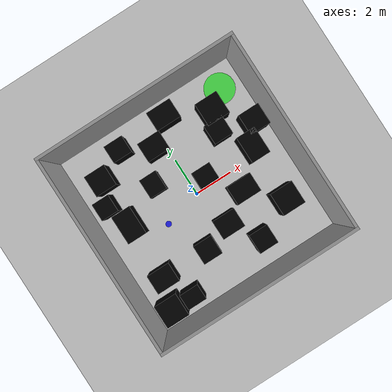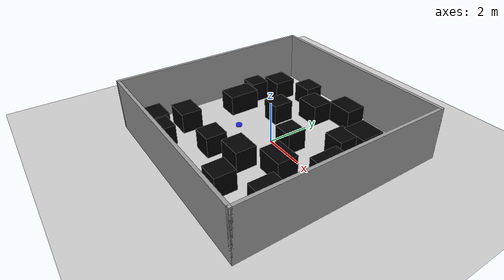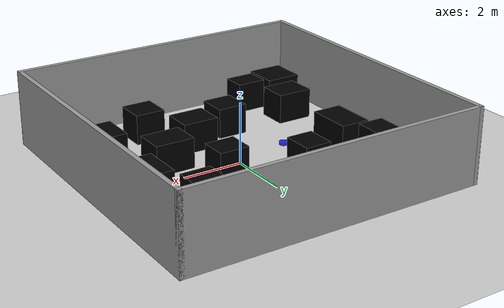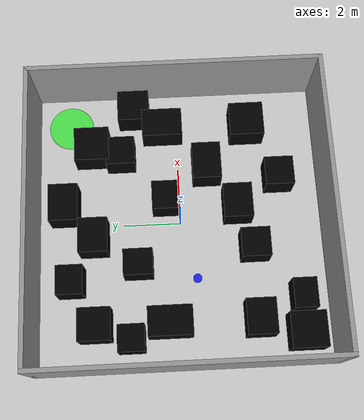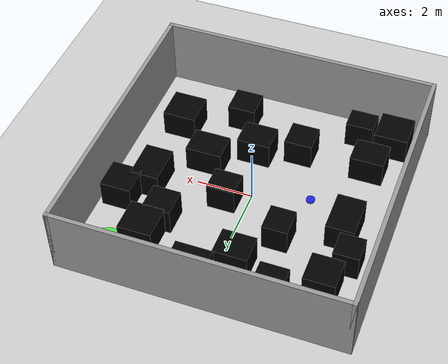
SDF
<?xml version="1.0" ?>
<sdf version="1.6">
  <world name="env_20_feasible_path">
    <gravity>0 0 -9.8</gravity>

    <!-- Sun & Ground -->
    <include><uri>model://sun</uri></include>
    <include><uri>model://ground_plane</uri></include>

    <!-- Walls -->
    <model name="walls">
      <static>true</static>
      <link name="link">
        <collision name="bottom_collision"><geometry><box><size>10.15 0.15 2.5</size></box></geometry><pose>0 -5 1.25 0 0 0</pose></collision>
        <visual name="wall_bottom"><geometry><box><size>10.15 0.15 2.5</size></box></geometry><pose>0 -5 1.25 0 0 0</pose><material><ambient>0.6 0.6 0.6 1</ambient></material></visual>
        <collision name="top_collision"><geometry><box><size>10.15 0.15 2.5</size></box></geometry><pose>0 5 1.25 0 0 0</pose></collision>
        <visual name="wall_top"><geometry><box><size>10.15 0.15 2.5</size></box></geometry><pose>0 5 1.25 0 0 0</pose><material><ambient>0.6 0.6 0.6 1</ambient></material></visual>
        <collision name="left_collision"><geometry><box><size>0.15 10.15 2.5</size></box></geometry><pose>-5 0 1.25 0 0 0</pose></collision>
        <visual name="wall_left"><geometry><box><size>0.15 10.15 2.5</size></box></geometry><pose>-5 0 1.25 0 0 0</pose><material><ambient>0.6 0.6 0.6 1</ambient></material></visual>
        <collision name="right_collision"><geometry><box><size>0.15 10.15 2.5</size></box></geometry><pose>5 0 1.25 0 0 0</pose></collision>
        <visual name="wall_right"><geometry><box><size>0.15 10.15 2.5</size></box></geometry><pose>5 0 1.25 0 0 0</pose><material><ambient>0.6 0.6 0.6 1</ambient></material></visual>
      </link>
    </model>

    <!-- Start -->
    <model name="start_marker">
      <static>true</static>
      <pose>-1.99 -0.5 0.05 0 0 0</pose>
      <link name="link">
        <collision name="collision"><geometry><cylinder><radius>0.15</radius><length>0.1</length></cylinder></geometry></collision>
        <visual name="visual"><geometry><cylinder><radius>0.15</radius><length>0.1</length></cylinder></geometry><material><ambient>0 0 1 0.8</ambient></material></visual>
      </link>
    </model>

    <!-- Goal -->
    <model name="goal_region">
      <static>true</static>
      <pose>3.8 3.8 0.05 0 0 0</pose>
      <link name="link">
        <collision name="collision"><geometry><cylinder><radius>0.8</radius><length>0.05</length></cylinder></geometry></collision>
        <visual name="visual"><geometry><cylinder><radius>0.8</radius><length>0.05</length></cylinder></geometry><material><ambient>0 1 0 0.6</ambient></material></visual>
      </link>
    </model>

    <!-- Obstacles -->
    <!-- Arranged with a diagonal corridor at least 0.5 m wide from start to goal -->

    <!-- Bottom-left cluster -->
    <model name="obs0"><static>true</static><pose>-4.0 -4.0 0.5 0 0 0</pose><link name="l"><collision name="c"><geometry><box><size>1.2 1.2 1.0</size></box></geometry></collision><visual name="v"><geometry><box><size>1.2 1.2 1.0</size></box></geometry><material><ambient>0 0 0 1</ambient></material></visual></link></model>
    <model name="obs1"><static>true</static><pose>-2.8 -4.0 0.5 0 0 0</pose><link name="l"><collision name="c"><geometry><box><size>1.0 0.8 1.0</size></box></geometry></collision><visual name="v"><geometry><box><size>1.0 0.8 1.0</size></box></geometry><material><ambient>0 0 0 1</ambient></material></visual></link></model>
    <model name="obs2"><static>true</static><pose>-3.5 -2.5 0.5 0 0 0</pose><link name="l"><collision name="c"><geometry><box><size>1.2 1.0 1.0</size></box></geometry></collision><visual name="v"><geometry><box><size>1.2 1.0 1.0</size></box></geometry><material><ambient>0 0 0 1</ambient></material></visual></link></model>

    <!-- Mid-left barrier -->
    <model name="obs3"><static>true</static><pose>-3.5 0.5 0.5 0 0 0</pose><link name="l"><collision name="c"><geometry><box><size>1.0 1.5 1.0</size></box></geometry></collision><visual name="v"><geometry><box><size>1.0 1.5 1.0</size></box></geometry><material><ambient>0 0 0 1</ambient></material></visual></link></model>

    <!-- Central obstacles -->
    <model name="obs4"><static>true</static><pose>-1.0 -2.5 0.5 0 0 0</pose><link name="l"><collision name="c"><geometry><box><size>1.0 1.0 1.0</size></box></geometry></collision><visual name="v"><geometry><box><size>1.0 1.0 1.0</size></box></geometry><material><ambient>0 0 0 1</ambient></material></visual></link></model>
    <model name="obs5"><static>true</static><pose>0.5 -2.0 0.5 0 0 0</pose><link name="l"><collision name="c"><geometry><box><size>1.2 1.0 1.0</size></box></geometry></collision><visual name="v"><geometry><box><size>1.2 1.0 1.0</size></box></geometry><material><ambient>0 0 0 1</ambient></material></visual></link></model>
    <model name="obs6"><static>true</static><pose>2.0 -1.0 0.5 0 0 0</pose><link name="l"><collision name="c"><geometry><box><size>1.3 1.0 1.0</size></box></geometry></collision><visual name="v"><geometry><box><size>1.3 1.0 1.0</size></box></geometry><material><ambient>0 0 0 1</ambient></material></visual></link></model>

    <!-- Mid-right cluster -->
    <model name="obs7"><static>true</static><pose>3.5 -2.5 0.5 0 0 0</pose><link name="l"><collision name="c"><geometry><box><size>1.2 1.2 1.0</size></box></geometry></collision><visual name="v"><geometry><box><size>1.2 1.2 1.0</size></box></geometry><material><ambient>0 0 0 1</ambient></material></visual></link></model>

    <!-- Center-right barrier -->
    <model name="obs8"><static>true</static><pose>3.5 0.5 0.5 0 0 0</pose><link name="l"><collision name="c"><geometry><box><size>1.0 1.4 1.0</size></box></geometry></collision><visual name="v"><geometry><box><size>1.0 1.4 1.0</size></box></geometry><material><ambient>0 0 0 1</ambient></material></visual></link></model>

    <!-- Top clusters -->
    <model name="obs9"><static>true</static><pose>-3.5 3.0 0.5 0 0 0</pose><link name="l"><collision name="c"><geometry><box><size>1.1 1.1 1.0</size></box></geometry></collision><visual name="v"><geometry><box><size>1.1 1.1 1.0</size></box></geometry><material><ambient>0 0 0 1</ambient></material></visual></link></model>
    <model name="obs10"><static>true</static><pose>-2.0 3.8 0.5 0 0 0</pose><link name="l"><collision name="c"><geometry><box><size>1.0 0.9 1.0</size></box></geometry></collision><visual name="v"><geometry><box><size>1.0 0.9 1.0</size></box></geometry><material><ambient>0 0 0 1</ambient></material></visual></link></model>
    <model name="obs11"><static>true</static><pose>-0.5 3.0 0.5 0 0 0</pose><link name="l"><collision name="c"><geometry><box><size>1.2 1.0 1.0</size></box></geometry></collision><visual name="v"><geometry><box><size>1.2 1.0 1.0</size></box></geometry><material><ambient>0 0 0 1</ambient></material></visual></link></model>
    <model name="obs12"><static>true</static><pose>.7 4 0.5 0 0 0</pose><link name="l"><collision name="c"><geometry><box><size>1.3 1.0 1.0</size></box></geometry></collision><visual name="v"><geometry><box><size>1.3 1.0 1.0</size></box></geometry><material><ambient>0 0 0 1</ambient></material></visual></link></model>
    <model name="obs13"><static>true</static><pose>2.8 3.0 0.5 0 0 0</pose><link name="l"><collision name="c"><geometry><box><size>1.2 1.2 1.0</size></box></geometry></collision><visual name="v"><geometry><box><size>1.2 1.2 1.0</size></box></geometry><material><ambient>0 0 0 1</ambient></material></visual></link></model>
    <model name="obs14"><static>true</static><pose>1.5 -3.5 0.5 0 0 0</pose><link name="l"><collision name="c"><geometry><box><size>1.0 1.0 1.0</size></box></geometry></collision><visual name="v"><geometry><box><size>1.0 1.0 1.0</size></box></geometry><material><ambient>0 0 0 1</ambient></material></visual></link></model>

    <!-- Sparse filler to reach 20 obstacles but keep corridor -->
    <model name="obs15"><static>true</static><pose>-4.0 1.8 0.5 0 0 0</pose><link name="l"><collision name="c"><geometry><box><size>0.9 0.9 1.0</size></box></geometry></collision><visual name="v"><geometry><box><size>0.9 0.9 1.0</size></box></geometry><material><ambient>0 0 0 1</ambient></material></visual></link></model>
    <model name="obs16"><static>true</static><pose>-1.5 1.5 0.5 0 0 0</pose><link name="l"><collision name="c"><geometry><box><size>0.9 1.0 1.0</size></box></geometry></collision><visual name="v"><geometry><box><size>0.9 1.0 1.0</size></box></geometry><material><ambient>0 0 0 1</ambient></material></visual></link></model>
    <model name="obs17"><static>true</static><pose>0.8 0.5 0.5 0 0 0</pose><link name="l"><collision name="c"><geometry><box><size>1.0 0.9 1.0</size></box></geometry></collision><visual name="v"><geometry><box><size>1.0 0.9 1.0</size></box></geometry><material><ambient>0 0 0 1</ambient></material></visual></link></model>
    <model name="obs18"><static>true</static><pose>2.5 2.0 0.5 0 0 0</pose><link name="l"><collision name="c"><geometry><box><size>1.0 1.0 1.0</size></box></geometry></collision><visual name="v"><geometry><box><size>1.0 1.0 1.0</size></box></geometry><material><ambient>0 0 0 1</ambient></material></visual></link></model>
    <model name="obs19"><static>true</static><pose>4.2 1.5 0.5 0 0 0</pose><link name="l"><collision name="c"><geometry><box><size>1.1 1.1 1.0</size></box></geometry></collision><visual name="v"><geometry><box><size>1.1 1.1 1.0</size></box></geometry><material><ambient>0 0 0 1</ambient></material></visual></link></model>

  </world>
</sdf>
